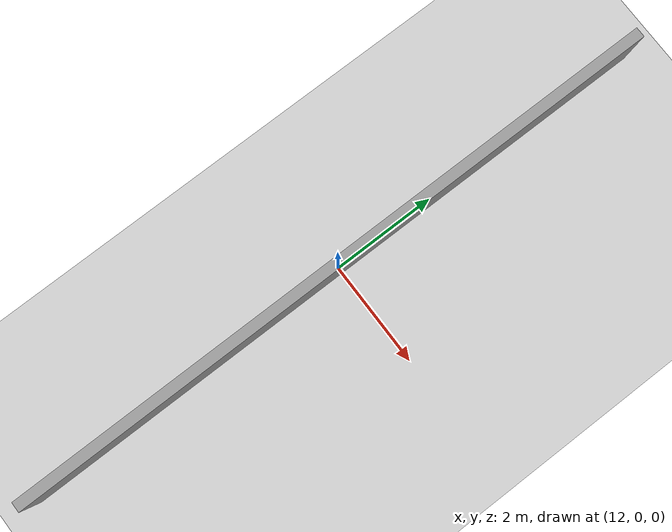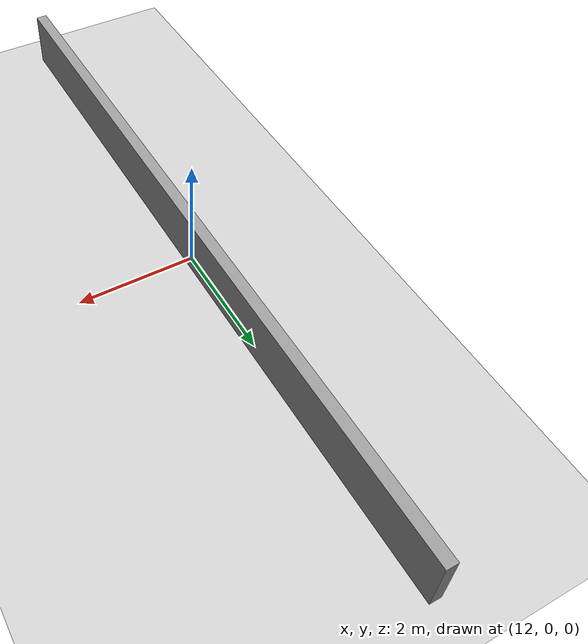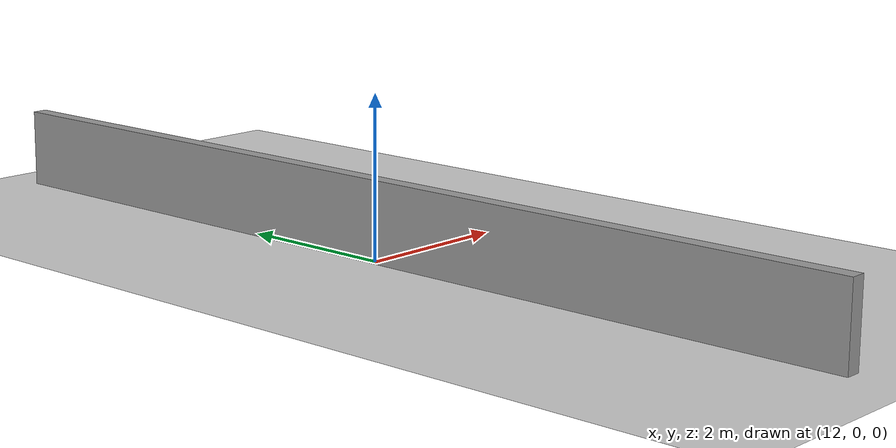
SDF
<?xml version="1.0" ?>
<sdf version="1.6">
    <world name="IARRC Curvy">
        <scene>
            <sky>
                <clouds>
                    <speed>12</speed>
                </clouds>
            </sky>
            <ambient>1.0 1.0 1.0 1.0</ambient>
            <background>0.7 0.7 0.7 1.0</background>
            <shadows>true</shadows>
            <grid>false</grid>
            <origin_visual>false</origin_visual>
        </scene>

        <include>
            <uri>model://sun</uri>
        </include>

        <model name='net'>
            <pose>12.0139 0.00204 0.5 0 0 0</pose>
            <static>true</static>
            <link name='net_link'>
                <collision name='collision'>
                    <geometry>
                        <box>
                            <size>0.194382 12.6506 1</size>
                        </box>
                    </geometry>
                </collision>
                <visual name='visual'>
                    <geometry>
                        <box>
                            <size>0.194382 12.6506 1</size>
                        </box>
                    </geometry>
                    <material>
                        <script>
                            <name>Gazebo/Grey</name>
                            <uri>file://media/materials/scripts/gazebo.material</uri>
                        </script>
                    </material>
                </visual>
            </link>
        </model>

        <include>
            <uri>model://TennisCourt</uri>
            <pose>12 0 0 0 0 0</pose>
        </include>

    </world>
</sdf>

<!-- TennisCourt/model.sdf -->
<sdf version="1.6">
  <model name="TennisCourt">
    <static>true</static>
    <link name="link">
      <collision name="collision">
        <geometry>
          <plane>
            <normal>0 0 1</normal>
            <size>40 55</size>
          </plane>
        </geometry>
        <surface>
          <friction>
            <ode>
              <mu>100</mu>
              <mu2>50</mu2>
            </ode>
          </friction>
             <bounce restitution_coefficient="1.0" threshold="0.01"/>
        </surface>
      </collision>
      <visual name="visual">
        <cast_shadows>true</cast_shadows>
        <geometry>
          <plane>
            <normal>0 0 1</normal>
            <size>28 14</size>
          </plane>
        </geometry>
        <material>
          <script>
            <uri>model://../materials/tennisCourt.material</uri>
            <name>Gazebo/tennisCourt</name>
          </script>
        </material>
      </visual>
    </link>
  </model>
</sdf>
